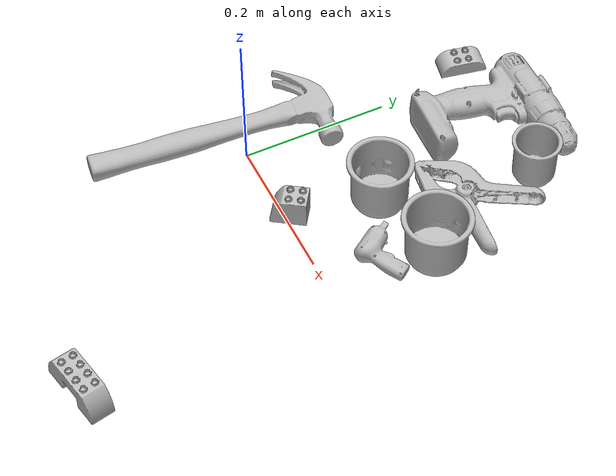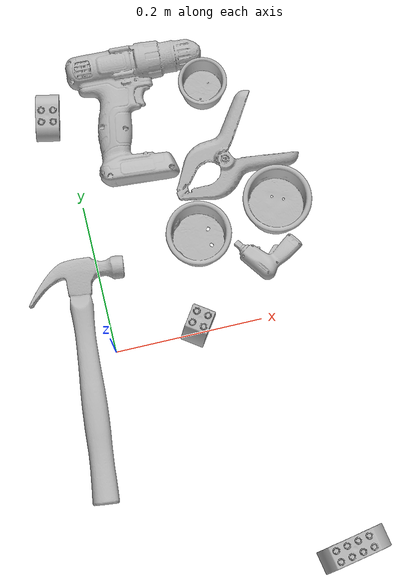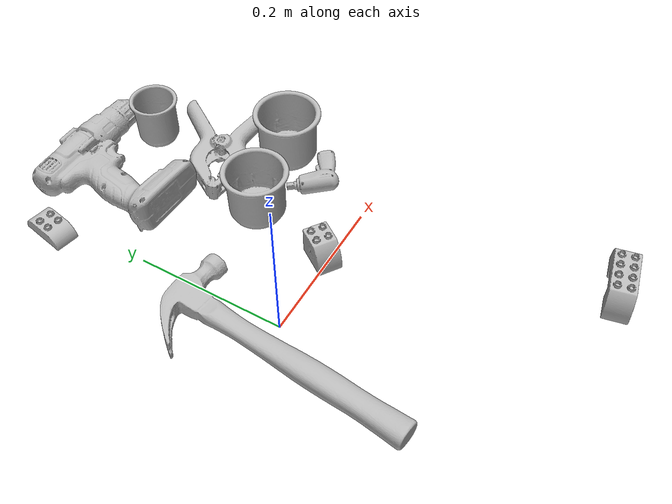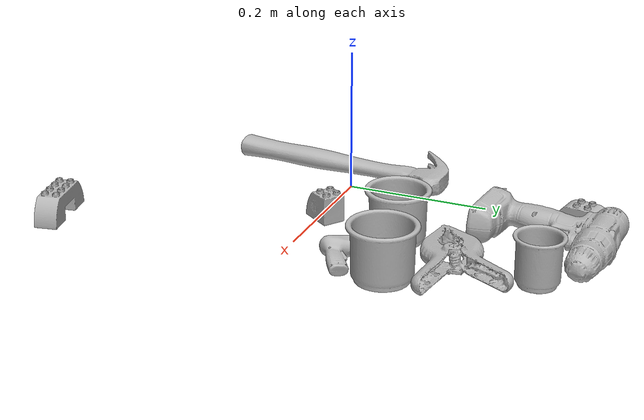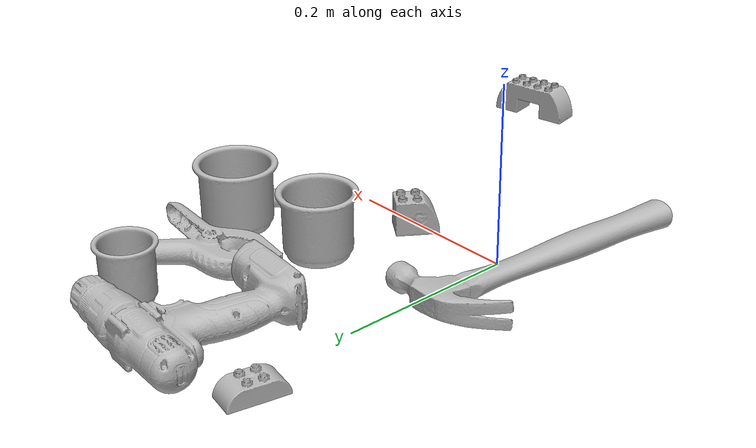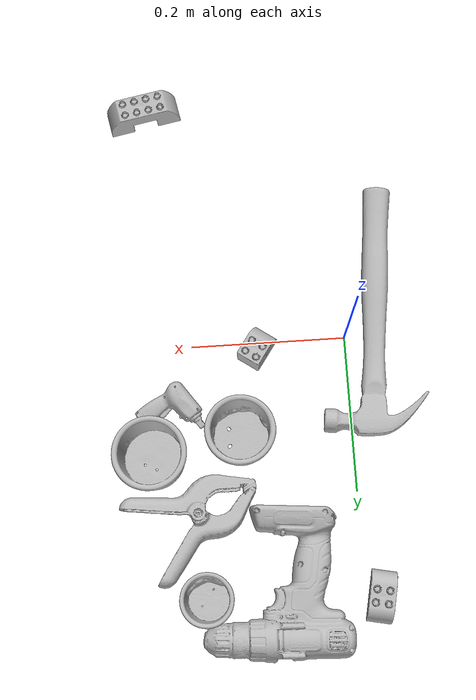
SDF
<sdf version="1.4">
  <world name="default">
    <light name="light1" type="point">
      <pose>0 0 1 0 0 0</pose>
      <diffuse>3 3 3 1</diffuse>
      <specular>3 3 3 1</specular>
    </light>
    <light name="light2" type="point">
      <pose>0 0.5 2 0 0 0</pose>
      <diffuse>1 1 1 1</diffuse>
      <specular>1 1 1 1</specular>
    </light>
    <light name="light3" type="point">
      <pose>0 0.5 2 0 0 0</pose>
      <diffuse>3 3 3 1</diffuse>
      <specular>3 3 3 1</specular>
    </light>
    <scene>
      <ambient>0.7 0.7 0.7</ambient>
    </scene>
    <model name="cup1">
      <link name="link_cup1">
        <collision name="default">
          <geometry>
            <mesh>
              <uri>model://g_cups/collision_meshes/collision.obj</uri>
              <scale>1.0 1.0 1.0</scale>
            </mesh>
          </geometry>
          <surface>
            <friction>
              <ode>
                <mu>0.5</mu>
                <mu2>0.5</mu2>
              </ode>
            </friction>
          <contact>
        <ode>
            <max_vel>0</max_vel>
            <min_depth>0.0001</min_depth>
            <kp>1e8</kp>
        </ode>
    </contact></surface>
        </collision>
        <visual name="default">
          <geometry>
            <mesh>
              <uri>model://g_cups/visual_meshes/visual.dae</uri>
              <scale>1.0 1.0 1.0</scale>
            </mesh>
          </geometry>
        </visual>
        <inertial>
          <mass>0.057625629007816315</mass>
          <pose>-0.0007946282275952399 -4.206500670989044e-05 -0.0021329375449568033 -0.21382697289054745 -0.3141031271963666 0.3112149002706268</pose>
          <inertia>
            <ixx>6.726202e-05</ixx>
            <iyy>6.7033216e-05</iyy>
            <izz>6.967186e-05</izz>
            <ixy>0</ixy>
            <ixz>0</ixz>
            <iyz>0</iyz>
          </inertia>
        </inertial>
      </link>
      <pose>0.14211039245128632 0.12257051467895508 0.03720305860042572 1.71763493048333e-05 -1.938155957912992e-05 1.4567135026210507</pose>
    </model>
    <model name="cup2">
      <link name="link_cup2">
        <collision name="default">
          <geometry>
            <mesh>
              <uri>model://c_cups/collision_meshes/collision.obj</uri>
              <scale>1.0 1.0 1.0</scale>
            </mesh>
          </geometry>
          <surface>
            <friction>
              <ode>
                <mu>0.5</mu>
                <mu2>0.5</mu2>
              </ode>
            </friction>
          <contact>
        <ode>
            <max_vel>0</max_vel>
            <min_depth>0.0001</min_depth>
            <kp>1e8</kp>
        </ode>
    </contact></surface>
        </collision>
        <visual name="default">
          <geometry>
            <mesh>
              <uri>model://c_cups/visual_meshes/visual.dae</uri>
              <scale>1.0 1.0 1.0</scale>
            </mesh>
          </geometry>
        </visual>
        <inertial>
          <mass>0.03477548435330391</mass>
          <pose>0.0007237261161208153 0.0020153902005404234 -0.0012750983005389571 0.30215732346046187 0.013461711857135551 -0.08771879968331305</pose>
          <inertia>
            <ixx>2.5862058e-05</ixx>
            <iyy>2.540504e-05</iyy>
            <izz>2.2871589e-05</izz>
            <ixy>0</ixy>
            <ixz>0</ixz>
            <iyz>0</iyz>
          </inertia>
        </inertial>
      </link>
      <pose>0.19315418601036072 0.32151252031326294 0.03345907852053642 1.1804552826491896e-05 4.233566148458056e-06 -2.794740256870977</pose>
    </model>
    <model name="cup3">
      <link name="link_cup3">
        <collision name="default">
          <geometry>
            <mesh>
              <uri>model://h_cups/collision_meshes/collision.obj</uri>
              <scale>1.0 1.0 1.0</scale>
            </mesh>
          </geometry>
          <surface>
            <friction>
              <ode>
                <mu>0.5</mu>
                <mu2>0.5</mu2>
              </ode>
            </friction>
          <contact>
        <ode>
            <max_vel>0</max_vel>
            <min_depth>0.0001</min_depth>
            <kp>1e8</kp>
        </ode>
    </contact></surface>
        </collision>
        <visual name="default">
          <geometry>
            <mesh>
              <uri>model://h_cups/visual_meshes/visual.dae</uri>
              <scale>1.0 1.0 1.0</scale>
            </mesh>
          </geometry>
        </visual>
        <inertial>
          <mass>0.050017159432172775</mass>
          <pose>-2.702731035242323e-05 0.0002301866770721972 -0.0018405388109385967 -0.024362003715272553 0.06545245272055236 0.12885201823743497</pose>
          <inertia>
            <ixx>6.459484e-05</ixx>
            <iyy>6.382401e-05</iyy>
            <izz>6.774227e-05</izz>
            <ixy>0</ixy>
            <ixz>0</ixz>
            <iyz>0</iyz>
          </inertia>
        </inertial>
      </link>
      <pose>0.253878116607666 0.1441546529531479 0.037757810205221176 -6.838288735469811e-06 -1.4483792792663412e-05 -2.0949885023067805</pose>
    </model>
    <model name="toy1">
      <link name="link_toy1">
        <collision name="default">
          <geometry>
            <mesh>
              <uri>model://e_lego_duplo/collision_meshes/collision.obj</uri>
              <scale>1.0 1.0 1.0</scale>
            </mesh>
          </geometry>
          <surface>
            <friction>
              <ode>
                <mu>0.5</mu>
                <mu2>0.5</mu2>
              </ode>
            </friction>
          <contact>
        <ode>
            <max_vel>0</max_vel>
            <min_depth>0.0001</min_depth>
            <kp>1e8</kp>
        </ode>
    </contact></surface>
        </collision>
        <visual name="default">
          <geometry>
            <mesh>
              <uri>model://e_lego_duplo/visual_meshes/visual.dae</uri>
              <scale>1.0 1.0 1.0</scale>
            </mesh>
          </geometry>
        </visual>
        <inertial>
          <mass>0.09100330621004105</mass>
          <pose>0.0003256048948969692 0.00023485418932978064 0.0019521461799740791 -0.02256778535698338 -6.825395529084007e-05 -0.0076251622764869605</pose>
          <inertia>
            <ixx>1.897719e-05</ixx>
            <iyy>7.788726e-05</iyy>
            <izz>7.584653e-05</izz>
            <ixy>0</ixy>
            <ixz>0</ixz>
            <iyz>0</iyz>
          </inertia>
        </inertial>
      </link>
      <pose>0.24990592896938324 -0.3279115855693817 0.0218089297413826 7.197024545315539e-07 -4.4867427113970276e-08 0.2019728088673473</pose>
    </model>
    <model name="toy2">
      <link name="link_toy2">
        <collision name="default">
          <geometry>
            <mesh>
              <uri>model://b_toy_airplane/collision_meshes/collision.obj</uri>
              <scale>0.5 0.5 0.5</scale>
            </mesh>
          </geometry>
          <surface>
            <friction>
              <ode>
                <mu>0.5</mu>
                <mu2>0.5</mu2>
              </ode>
            </friction>
          <contact>
        <ode>
            <max_vel>0</max_vel>
            <min_depth>0.0001</min_depth>
            <kp>1e8</kp>
        </ode>
    </contact></surface>
        </collision>
        <visual name="default">
          <geometry>
            <mesh>
              <uri>model://b_toy_airplane/visual_meshes/visual.dae</uri>
              <scale>0.5 0.5 0.5</scale>
            </mesh>
          </geometry>
        </visual>
        <inertial>
          <mass>0.06363805383443832</mass>
          <pose>0.002540681976824999 0.0020077931694686413 0.004771532956510782 -0.0400181041712346 -0.04022185546555606 -0.5601502891427816</pose>
          <inertia>
            <ixx>2.9536302e-05</ixx>
            <iyy>1.1805946e-05</iyy>
            <izz>3.6746103e-05</izz>
            <ixy>0</ixy>
            <ixz>0</ixz>
            <iyz>0</iyz>
          </inertia>
        </inertial>
      </link>
      <pose>0.2285798192024231 0.0754939541220665 0.008488936349749565 0.18487649203546624 0.11349914373889008 2.2003697409675587</pose>
    </model>
    <model name="toy3">
      <link name="link_toy3">
        <collision name="default">
          <geometry>
            <mesh>
              <uri>model://d_lego_duplo/collision_meshes/collision.obj</uri>
              <scale>1.0 1.0 1.0</scale>
            </mesh>
          </geometry>
          <surface>
            <friction>
              <ode>
                <mu>0.5</mu>
                <mu2>0.5</mu2>
              </ode>
            </friction>
          <contact>
        <ode>
            <max_vel>0</max_vel>
            <min_depth>0.0001</min_depth>
            <kp>1e8</kp>
        </ode>
    </contact></surface>
        </collision>
        <visual name="default">
          <geometry>
            <mesh>
              <uri>model://d_lego_duplo/visual_meshes/visual.dae</uri>
              <scale>1.0 1.0 1.0</scale>
            </mesh>
          </geometry>
        </visual>
        <inertial>
          <mass>0.05334000289440155</mass>
          <pose>0.002830563811585307 0.0001636617089388892 0.0008589810458943248 0.0801090676593232 -0.3835525121717052 0.0010296416750687279</pose>
          <inertia>
            <ixx>1.0325837e-05</ixx>
            <iyy>1.4655165e-05</iyy>
            <izz>1.4132847e-05</izz>
            <ixy>0</ixy>
            <ixz>0</ixz>
            <iyz>0</iyz>
          </inertia>
        </inertial>
      </link>
      <pose>0.11469805240631104 0.008383149281144142 0.021740002557635307 1.6675992320478472e-07 -6.704741787682472e-08 0.9669919850894036</pose>
    </model>
    <model name="toy4">
      <link name="link_toy4">
        <collision name="default">
          <geometry>
            <mesh>
              <uri>model://a_lego_duplo/collision_meshes/collision.obj</uri>
              <scale>1.0 1.0 1.0</scale>
            </mesh>
          </geometry>
          <surface>
            <friction>
              <ode>
                <mu>0.5</mu>
                <mu2>0.5</mu2>
              </ode>
            </friction>
          <contact>
        <ode>
            <max_vel>0</max_vel>
            <min_depth>0.0001</min_depth>
            <kp>1e8</kp>
        </ode>
    </contact></surface>
        </collision>
        <visual name="default">
          <geometry>
            <mesh>
              <uri>model://a_lego_duplo/visual_meshes/visual.dae</uri>
              <scale>1.0 1.0 1.0</scale>
            </mesh>
          </geometry>
        </visual>
        <inertial>
          <mass>0.02371947281062603</mass>
          <pose>-0.00011337659088894725 0.00018517536227591336 0.00036926098982803524 -0.014117032318495473 -0.00012566219654468525 6.139472672246545e-05</pose>
          <inertia>
            <ixx>3.0410272e-06</ixx>
            <iyy>6.8125664e-06</iyy>
            <izz>8.438875e-06</izz>
            <ixy>0</ixy>
            <ixz>0</ixz>
            <iyz>0</iyz>
          </inertia>
        </inertial>
      </link>
      <pose>-0.019780242815613747 0.33122900128364563 0.012111997231841087 -7.914083051208191e-07 -6.765107868684576e-07 -1.7640125437255127</pose>
    </model>
    <model name="hardware1">
      <link name="link_hardware1">
        <collision name="default">
          <geometry>
            <mesh>
              <uri>model://hammer/collision_meshes/collision.obj</uri>
              <scale>1.0 1.0 1.0</scale>
            </mesh>
          </geometry>
          <surface>
            <friction>
              <ode>
                <mu>0.5</mu>
                <mu2>0.5</mu2>
              </ode>
            </friction>
          <contact>
        <ode>
            <max_vel>0</max_vel>
            <min_depth>0.0001</min_depth>
            <kp>1e8</kp>
        </ode>
    </contact></surface>
        </collision>
        <visual name="default">
          <geometry>
            <mesh>
              <uri>model://hammer/visual_meshes/visual.dae</uri>
              <scale>1.0 1.0 1.0</scale>
            </mesh>
          </geometry>
        </visual>
        <inertial>
          <mass>0.21542595326900482</mass>
          <pose>0.009415775537490845 -0.011892358772456646 -0.00012350629549473524 0.02315578421630864 -0.004792165572519315 -0.012760317567756519</pose>
          <inertia>
            <ixx>9.2278024e-05</ixx>
            <iyy>0.0025004656</iyy>
            <izz>0.002572105</izz>
            <ixy>0</ixy>
            <ixz>0</ixz>
            <iyz>0</iyz>
          </inertia>
        </inertial>
      </link>
      <pose>-0.050400298088788986 -0.019101712852716446 0.016267376020550728 -0.005199013944892128 -0.001380216445388899 1.4688340499365393</pose>
    </model>
    <model name="hardware2">
      <link name="link_hardware2">
        <collision name="default">
          <geometry>
            <mesh>
              <uri>model://large_clamp/collision_meshes/collision.obj</uri>
              <scale>1.0 1.0 1.0</scale>
            </mesh>
          </geometry>
          <surface>
            <friction>
              <ode>
                <mu>0.5</mu>
                <mu2>0.5</mu2>
              </ode>
            </friction>
          <contact>
        <ode>
            <max_vel>0</max_vel>
            <min_depth>0.0001</min_depth>
            <kp>1e8</kp>
        </ode>
    </contact></surface>
        </collision>
        <visual name="default">
          <geometry>
            <mesh>
              <uri>model://large_clamp/visual_meshes/visual.dae</uri>
              <scale>1.0 1.0 1.0</scale>
            </mesh>
          </geometry>
        </visual>
        <inertial>
          <mass>0.16898278892040253</mass>
          <pose>0.006369357462972403 0.00035856629256159067 -0.00018398034444544464 -0.002133075920149734 0.009671594117503977 0.026633212091596442</pose>
          <inertia>
            <ixx>0.00014908903</ixx>
            <iyy>0.00028312797</iyy>
            <izz>0.00040958088</izz>
            <ixy>0</ixy>
            <ixz>0</ixz>
            <iyz>0</iyz>
          </inertia>
        </inertial>
      </link>
      <pose>0.20129984617233276 0.2187761515378952 0.018504144623875618 -0.01157693895713429 0.04692775635648403 -2.7199570553219177</pose>
    </model>
    <model name="hardware3">
      <link name="link_hardware3">
        <collision name="default">
          <geometry>
            <mesh>
              <uri>model://power_drill/collision_meshes/collision.obj</uri>
              <scale>1.0 1.0 1.0</scale>
            </mesh>
          </geometry>
          <surface>
            <friction>
              <ode>
                <mu>0.5</mu>
                <mu2>0.5</mu2>
              </ode>
            </friction>
          <contact>
        <ode>
            <max_vel>0</max_vel>
            <min_depth>0.0001</min_depth>
            <kp>1e8</kp>
        </ode>
    </contact></surface>
        </collision>
        <visual name="default">
          <geometry>
            <mesh>
              <uri>model://power_drill/visual_meshes/visual.dae</uri>
              <scale>1.0 1.0 1.0</scale>
            </mesh>
          </geometry>
        </visual>
        <inertial>
          <mass>0.7224003672599792</mass>
          <pose>-0.014780545607209206 0.014369428157806396 0.0012414171360433102 0.0046091635101465946 0.00407302394444766 -0.18362692290061644</pose>
          <inertia>
            <ixx>0.002943816</ixx>
            <iyy>0.0011582379</iyy>
            <izz>0.0038878287</izz>
            <ixy>0</ixy>
            <ixz>0</ixz>
            <iyz>0</iyz>
          </inertia>
        </inertial>
      </link>
      <pose>0.10547030717134476 0.3068675398826599 0.02731243520975113 -0.030306002858236564 -0.04725285873935511 -0.059922307974933975</pose>
    </model>
  <physics type="ode">
      <max_contacts>50</max_contacts>
      <ode>
        <solver>
          <type>quick</type>
          <iters>75</iters>
        </solver>
        <constraints>
          <contact_max_correcting_vel>0</contact_max_correcting_vel>
          <contact_surface_layer>0</contact_surface_layer>
        </constraints>
      </ode>
    </physics></world>
</sdf>
